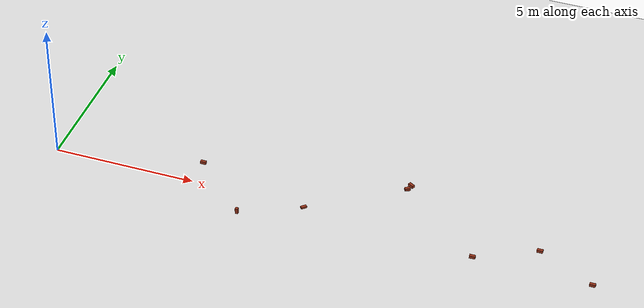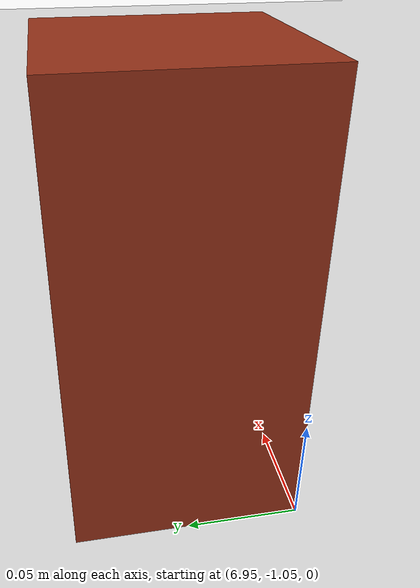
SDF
<?xml version="1.0" ?>
<sdf version="1.8">
  <world name="debris_world">
    <!-- PHYSICS -->
    <physics name="default_physics" type="ode">
      <max_step_size>0.002</max_step_size>
      <real_time_factor>1.0</real_time_factor>
      <real_time_update_rate>500</real_time_update_rate>
    </physics>

    <!-- PLUGINS -->
    <plugin filename="gz-sim-physics-system" name="gz::sim::systems::Physics" />
    <plugin filename="gz-sim-sensors-system" name="gz::sim::systems::Sensors">
        <render_engine>ogre2</render_engine>
    </plugin>
    <plugin filename="gz-sim-user-commands-system" name="gz::sim::systems::UserCommands" />
    <plugin filename="gz-sim-scene-broadcaster-system" name="gz::sim::systems::SceneBroadcaster" />

    <light type="directional" name="sun"><pose>0 0 10 0 0 0</pose></light>

    <!-- GROUND PLANE (Light Gray Concrete) -->
    <!-- THE BRIGHT WHITE GROUND PLANE -->
    <model name="ground_plane">
      <static>true</static>
      <link name="link">
        <collision name="collision">
          <geometry><plane><normal>0 0 1</normal><size>100 100</size></plane></geometry>
        </collision>
        <visual name="visual">
          <geometry><plane><normal>0 0 1</normal><size>100 100</size></plane></geometry>
          <!-- Use the built-in Gazebo White material for guaranteed lighting -->
          <material>
            <ambient>0.9 0.9 0.9 1</ambient>
            <diffuse>0.9 0.9 0.9 1</diffuse>
            <specular>0.1 0.1 0.1 1</specular>
            <emissive>0 0 0 1</emissive>
          </material>
        </visual>
      </link>
      <pose>0 0 0 0 0 0</pose>
    </model>

    <!-- DEBRIS FIELD (Standard Bricks: 20cm x 10cm x 10cm) -->

    <!-- Scenario A: Standard Horizontal Brick (Easy to see) -->
    <model name="brick_1">
      <static>true</static>
      <pose>5 1 0.05 0 0 0</pose>
      <link name="link">
        <collision name="col"><geometry><box><size>0.2 0.1 0.1</size></box></geometry></collision>
        <visual name="vis"><geometry><box><size>0.2 0.1 0.1</size></box></geometry><material><ambient>0.6 0.2 0.1 1</ambient></material></visual>
      </link>
    </model>

    <!-- Scenario B: Vertical Brick (Small footprint, but tall: 20cm) -->
    <model name="brick_2">
      <static>true</static>
      <pose>7 -1 0.1 0 1.57 0</pose>
      <link name="link">
        <collision name="col"><geometry><box><size>0.2 0.1 0.1</size></box></geometry></collision>
        <visual name="vis"><geometry><box><size>0.2 0.1 0.1</size></box></geometry><material><ambient>0.6 0.2 0.1 1</ambient></material></visual>
      </link>
    </model>

    <!-- Scenario C: Half-Buried Brick (Hardest to detect: only 5cm sticking out) -->
    <model name="brick_3">
      <static>true</static>
      <pose>9 0 0.0 0 0 0.785</pose> <!-- Angled 45 deg, sunken -->
      <link name="link">
        <collision name="col"><geometry><box><size>0.2 0.1 0.1</size></box></geometry></collision>
        <visual name="vis"><geometry><box><size>0.2 0.1 0.1</size></box></geometry><material><ambient>0.6 0.2 0.1 1</ambient></material></visual>
      </link>
    </model>

    <!-- Scenario D: Brick Pile (Small cluster) -->
    <model name="brick_4">
      <static>true</static>
      <pose>12 2 0.05 0 0 0.5</pose>
      <link name="link">
        <collision name="col"><geometry><box><size>0.2 0.1 0.1</size></box></geometry></collision>
        <visual name="vis"><geometry><box><size>0.2 0.1 0.1</size></box></geometry><material><ambient>0.6 0.2 0.1 1</ambient></material></visual>
      </link>
    </model>
    <model name="brick_5">
      <static>true</static>
      <pose>12.1 2.1 0.15 0 0 -0.5</pose>
      <link name="link">
        <collision name="col"><geometry><box><size>0.2 0.1 0.1</size></box></geometry></collision>
        <visual name="vis"><geometry><box><size>0.2 0.1 0.1</size></box></geometry><material><ambient>0.6 0.2 0.1 1</ambient></material></visual>
      </link>
    </model>

    <!-- Scenario E: A line of debris forcing the robot to zig-zag -->
    <model name="brick_6">
      <static>true</static>
      <pose>15 -0.5 0.05 0 0 0</pose>
      <link name="link"><collision name="col"><geometry><box><size>0.2 0.1 0.1</size></box></geometry></collision><visual name="vis"><geometry><box><size>0.2 0.1 0.1</size></box></geometry><material><ambient>0.6 0.2 0.1 1</ambient></material></visual></link>
    </model>
    <model name="brick_7">
      <static>true</static>
      <pose>17 0.5 0.05 0 0 0</pose>
      <link name="link"><collision name="col"><geometry><box><size>0.2 0.1 0.1</size></box></geometry></collision><visual name="vis"><geometry><box><size>0.2 0.1 0.1</size></box></geometry><material><ambient>0.6 0.2 0.1 1</ambient></material></visual></link>
    </model>
    <model name="brick_8">
      <static>true</static>
      <pose>19 -0.5 0.05 0 0 0</pose>
      <link name="link"><collision name="col"><geometry><box><size>0.2 0.1 0.1</size></box></geometry></collision><visual name="vis"><geometry><box><size>0.2 0.1 0.1</size></box></geometry><material><ambient>0.6 0.2 0.1 1</ambient></material></visual></link>
    </model>

  </world>
</sdf>
